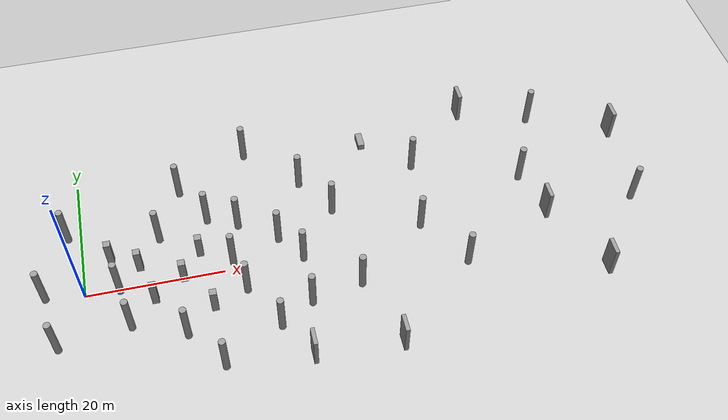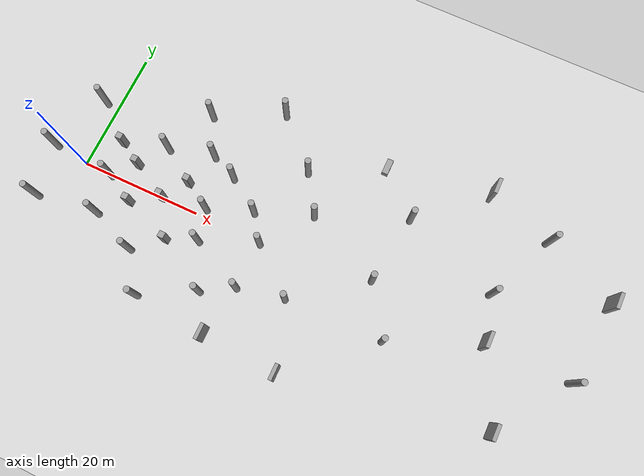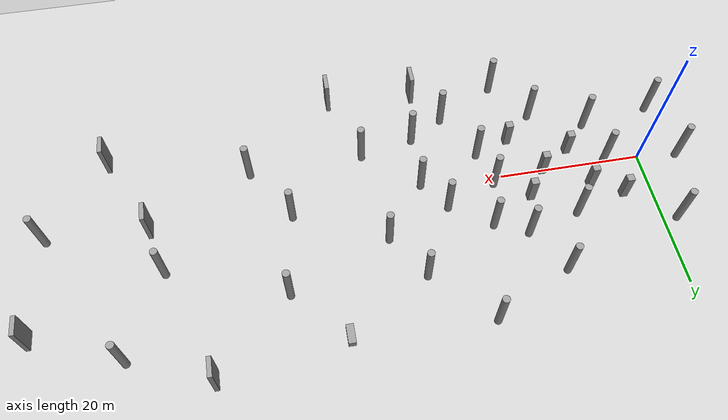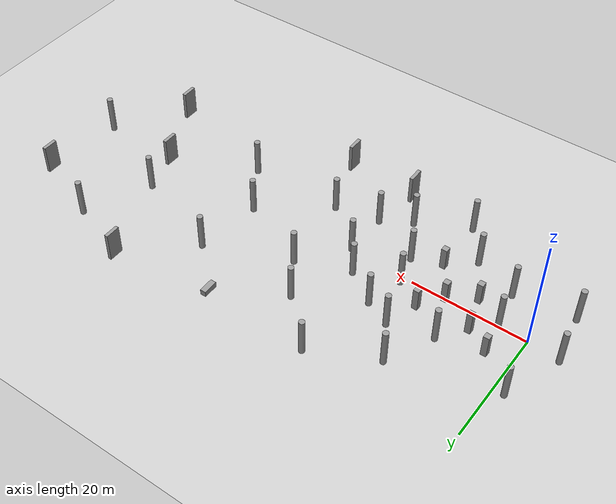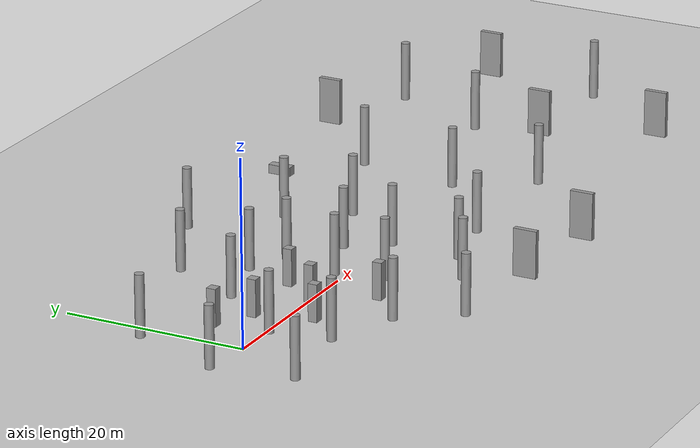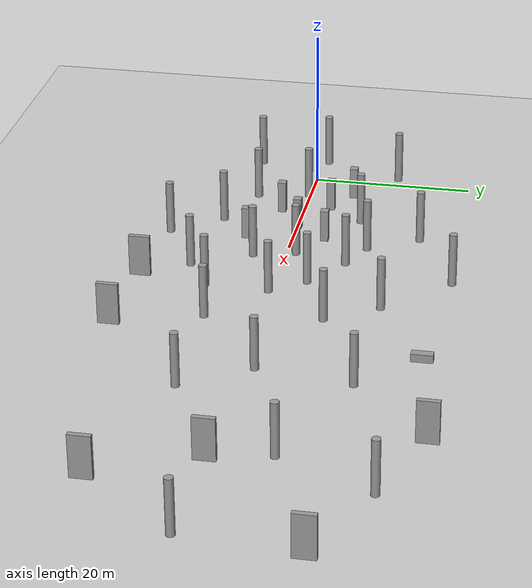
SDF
<sdf version="1.6">
 <world name="default">
  <light name="sun" type="directional">
   <pose>0 0 10 0 -0 0</pose>
   <diffuse>0.8 0.8 0.8 1</diffuse>
   <specular>0.2 0.2 0.2 1</specular>
   <attenuation>
    <range>1000</range>
    <constant>0.9</constant>
    <linear>0.01</linear>
    <quadratic>0.001</quadratic>
   </attenuation>
   <direction>-0.5 0.1 -0.9</direction>
  </light>
  <model name="ground_plane">
   <static>1</static>
   <link name="link">
    <collision name="collision">
     <geometry><plane><normal>0 0 1</normal><size>100 100</size></plane></geometry>
     <surface><friction><ode><mu>100</mu><mu2>50</mu2></ode></friction></surface>
    </collision>
    <visual name="visual">
     <cast_shadows>0</cast_shadows>
     <geometry><plane><normal>0 0 1</normal><size>20000 20000</size></plane></geometry>
     <material>
      <script><uri>file://media/materials/scripts/gazebo.material</uri><name>Gazebo/Grey</name></script>
     </material>
    </visual>
   </link>
  </model>
  <gravity>0 0 -9.8</gravity>
  <magnetic_field>6e-06 2.3e-05 -4.2e-05</magnetic_field>
  <atmosphere type="adiabatic"/>
  <physics name="default_physics" default="0" type="ode">
   <max_step_size>0.001</max_step_size>
   <real_time_factor>1</real_time_factor>
   <real_time_update_rate>1000</real_time_update_rate>
  </physics>
  <scene><ambient>0.4 0.4 0.4 1</ambient><background>0.7 0.7 0.7 1</background><shadows>1</shadows></scene>
  <audio><device>default</device></audio>
  <spherical_coordinates>
   <surface_model>EARTH_WGS84</surface_model>
   <latitude_deg>0</latitude_deg>
   <longitude_deg>0</longitude_deg>
   <elevation>0</elevation>
   <heading_deg>0</heading_deg>
  </spherical_coordinates>
  <model name="unit_cylinder">
   <pose>4.99871 -0.213403 3.35891 0 -0 0.006155</pose>
   <link name="link">
    <inertial>
     <mass>1</mass>
     <inertia><ixx>0.145833</ixx><ixy>0</ixy><ixz>0</ixz><iyy>0.145833</iyy><iyz>0</iyz><izz>0.125</izz></inertia>
    </inertial>
    <collision name="collision">
     <geometry><cylinder><radius>0.5</radius><length>6.71783</length></cylinder></geometry>
    </collision>
    <visual name="visual">
     <geometry><cylinder><radius>0.5</radius><length>6.71783</length></cylinder></geometry>
     <material>
      <script><name>Gazebo/Grey</name><uri>file://media/materials/scripts/gazebo.material</uri></script>
     </material>
    </visual>
   </link>
  </model>
  <model name="unit_box">
   <pose>4.11267 5.56916 2.02901 0 -1e-06 -0.002118</pose>
   <link name="link">
    <inertial>
     <mass>1</mass>
     <inertia>
      <ixx>0.166667</ixx>
      <ixy>0</ixy>
      <ixz>0</ixz>
      <iyy>0.166667</iyy>
      <iyz>0</iyz>
      <izz>0.166667</izz>
     </inertia>
    </inertial>
    <collision name="collision"><geometry><box><size>1 1 4.05803</size></box></geometry></collision>
    <visual name="visual">
     <geometry><box><size>1 1 4.05803</size></box></geometry>
     <material>
      <script><name>Gazebo/Grey</name><uri>file://media/materials/scripts/gazebo.material</uri></script>
     </material>
    </visual>
   </link>
  </model>
  <model name="unit_box_clone">
   <pose>8.1035 3.24149 2.02901 0 1e-06 -0.001531</pose>
   <link name="link">
    <inertial>
     <mass>1</mass>
     <inertia>
      <ixx>0.166667</ixx>
      <ixy>0</ixy>
      <ixz>0</ixz>
      <iyy>0.166667</iyy>
      <iyz>0</iyz>
      <izz>0.166667</izz>
     </inertia>
    </inertial>
    <collision name="collision"><geometry><box><size>1 1 4.05803</size></box></geometry></collision>
    <visual name="visual">
     <geometry><box><size>1 1 4.05803</size></box></geometry>
     <material>
      <script><name>Gazebo/Grey</name><uri>file://media/materials/scripts/gazebo.material</uri></script>
     </material>
    </visual>
   </link>
  </model>
  <model name="unit_box_clone_0">
   <pose>9.76202 -2.77594 2.02901 1e-06 -0 -0.002239</pose>
   <link name="link">
    <inertial>
     <mass>1</mass>
     <inertia>
      <ixx>0.166667</ixx>
      <ixy>0</ixy>
      <ixz>0</ixz>
      <iyy>0.166667</iyy>
      <iyz>0</iyz>
      <izz>0.166667</izz>
     </inertia>
    </inertial>
    <collision name="collision"><geometry><box><size>1 1 4.05803</size></box></geometry></collision>
    <visual name="visual">
     <geometry><box><size>1 1 4.05803</size></box></geometry>
     <material>
      <script><name>Gazebo/Grey</name><uri>file://media/materials/scripts/gazebo.material</uri></script>
     </material>
    </visual>
   </link>
  </model>
  <model name="unit_box_clone_1">
   <pose>14.1052 0.019093 2.02901 0 -1e-06 -0.00179</pose>
   <link name="link">
    <inertial>
     <mass>1</mass>
     <inertia>
      <ixx>0.166667</ixx>
      <ixy>0</ixy>
      <ixz>0</ixz>
      <iyy>0.166667</iyy>
      <iyz>0</iyz>
      <izz>0.166667</izz>
     </inertia>
    </inertial>
    <collision name="collision"><geometry><box><size>1 1 4.05803</size></box></geometry></collision>
    <visual name="visual">
     <geometry><box><size>1 1 4.05803</size></box></geometry>
     <material>
      <script><name>Gazebo/Grey</name><uri>file://media/materials/scripts/gazebo.material</uri></script>
     </material>
    </visual>
   </link>
  </model>
  <model name="unit_box_clone_2">
   <pose>16.892 3.92415 2.02901 -1e-06 -0 -0.002498</pose>
   <link name="link">
    <inertial>
     <mass>1</mass>
     <inertia>
      <ixx>0.166667</ixx>
      <ixy>0</ixy>
      <ixz>0</ixz>
      <iyy>0.166667</iyy>
      <iyz>0</iyz>
      <izz>0.166667</izz>
     </inertia>
    </inertial>
    <collision name="collision"><geometry><box><size>1 1 4.05803</size></box></geometry></collision>
    <visual name="visual">
     <geometry><box><size>1 1 4.05803</size></box></geometry>
     <material>
      <script><name>Gazebo/Grey</name><uri>file://media/materials/scripts/gazebo.material</uri></script>
     </material>
    </visual>
   </link>
  </model>
  <model name="unit_box_clone_3">
   <pose>17.7979 -5.80746 2.02901 -1e-06 -0 -0.002314</pose>
   <link name="link">
    <inertial>
     <mass>1</mass>
     <inertia>
      <ixx>0.166667</ixx>
      <ixy>0</ixy>
      <ixz>0</ixz>
      <iyy>0.166667</iyy>
      <iyz>0</iyz>
      <izz>0.166667</izz>
     </inertia>
    </inertial>
    <collision name="collision"><geometry><box><size>1 1 4.05803</size></box></geometry></collision>
    <visual name="visual">
     <geometry><box><size>1 1 4.05803</size></box></geometry>
     <material>
      <script><name>Gazebo/Grey</name><uri>file://media/materials/scripts/gazebo.material</uri></script>
     </material>
    </visual>
   </link>
  </model>
  <model name="unit_cylinder_clone">
   <pose>11.3611 7.59955 3.35891 0 -0 0.006345</pose>
   <link name="link">
    <inertial>
     <mass>1</mass>
     <inertia><ixx>0.145833</ixx><ixy>0</ixy><ixz>0</ixz><iyy>0.145833</iyy><iyz>0</iyz><izz>0.125</izz></inertia>
    </inertial>
    <collision name="collision">
     <geometry><cylinder><radius>0.5</radius><length>6.71784</length></cylinder></geometry>
    </collision>
    <visual name="visual">
     <geometry><cylinder><radius>0.5</radius><length>6.71784</length></cylinder></geometry>
     <material>
      <script><name>Gazebo/Grey</name><uri>file://media/materials/scripts/gazebo.material</uri></script>
     </material>
    </visual>
   </link>
  </model>
  <model name="unit_cylinder_clone_0">
   <pose>6.11811 -6.58773 3.35892 0 -0 0.006228</pose>
   <link name="link">
    <inertial>
     <mass>1</mass>
     <inertia><ixx>0.145833</ixx><ixy>0</ixy><ixz>0</ixz><iyy>0.145833</iyy><iyz>0</iyz><izz>0.125</izz></inertia>
    </inertial>
    <collision name="collision">
     <geometry><cylinder><radius>0.5</radius><length>6.71784</length></cylinder></geometry>
    </collision>
    <visual name="visual">
     <geometry><cylinder><radius>0.5</radius><length>6.71784</length></cylinder></geometry>
     <material>
      <script><name>Gazebo/Grey</name><uri>file://media/materials/scripts/gazebo.material</uri></script>
     </material>
    </visual>
   </link>
  </model>
  <model name="unit_cylinder_clone_1">
   <pose>13.5787 -9.53663 3.35891 0 -0 0.00619</pose>
   <link name="link">
    <inertial>
     <mass>1</mass>
     <inertia><ixx>0.145833</ixx><ixy>0</ixy><ixz>0</ixz><iyy>0.145833</iyy><iyz>0</iyz><izz>0.125</izz></inertia>
    </inertial>
    <collision name="collision">
     <geometry><cylinder><radius>0.5</radius><length>6.71784</length></cylinder></geometry>
    </collision>
    <visual name="visual">
     <geometry><cylinder><radius>0.5</radius><length>6.71784</length></cylinder></geometry>
     <material>
      <script><name>Gazebo/Grey</name><uri>file://media/materials/scripts/gazebo.material</uri></script>
     </material>
    </visual>
   </link>
  </model>
  <model name="unit_cylinder_clone_2">
   <pose>21.3973 1.13938 3.35892 0 -0 0.006161</pose>
   <link name="link">
    <inertial>
     <mass>1</mass>
     <inertia><ixx>0.145833</ixx><ixy>0</ixy><ixz>0</ixz><iyy>0.145833</iyy><iyz>0</iyz><izz>0.125</izz></inertia>
    </inertial>
    <collision name="collision">
     <geometry><cylinder><radius>0.5</radius><length>6.71784</length></cylinder></geometry>
    </collision>
    <visual name="visual">
     <geometry><cylinder><radius>0.5</radius><length>6.71784</length></cylinder></geometry>
     <material>
      <script><name>Gazebo/Grey</name><uri>file://media/materials/scripts/gazebo.material</uri></script>
     </material>
    </visual>
   </link>
  </model>
  <model name="unit_cylinder_clone_3">
   <pose>22.6899 -3.96109 3.35891 0 -0 0.005784</pose>
   <link name="link">
    <inertial>
     <mass>1</mass>
     <inertia><ixx>0.145833</ixx><ixy>0</ixy><ixz>0</ixz><iyy>0.145833</iyy><iyz>0</iyz><izz>0.125</izz></inertia>
    </inertial>
    <collision name="collision">
     <geometry><cylinder><radius>0.5</radius><length>6.71784</length></cylinder></geometry>
    </collision>
    <visual name="visual">
     <geometry><cylinder><radius>0.5</radius><length>6.71784</length></cylinder></geometry>
     <material>
      <script><name>Gazebo/Grey</name><uri>file://media/materials/scripts/gazebo.material</uri></script>
     </material>
    </visual>
   </link>
  </model>
  <model name="unit_cylinder_clone_4">
   <pose>23.0207 7.56781 3.35892 0 -0 0.005775</pose>
   <link name="link">
    <inertial>
     <mass>1</mass>
     <inertia><ixx>0.145833</ixx><ixy>0</ixy><ixz>0</ixz><iyy>0.145833</iyy><iyz>0</iyz><izz>0.125</izz></inertia>
    </inertial>
    <collision name="collision">
     <geometry><cylinder><radius>0.5</radius><length>6.71784</length></cylinder></geometry>
    </collision>
    <visual name="visual">
     <geometry><cylinder><radius>0.5</radius><length>6.71784</length></cylinder></geometry>
     <material>
      <script><name>Gazebo/Grey</name><uri>file://media/materials/scripts/gazebo.material</uri></script>
     </material>
    </visual>
   </link>
  </model>
  <model name="unit_cylinder_clone_5">
   <pose>18.6651 9.53159 3.35891 0 -0 0.005774</pose>
   <link name="link">
    <inertial>
     <mass>1</mass>
     <inertia><ixx>0.145833</ixx><ixy>0</ixy><ixz>0</ixz><iyy>0.145833</iyy><iyz>0</iyz><izz>0.125</izz></inertia>
    </inertial>
    <collision name="collision">
     <geometry><cylinder><radius>0.5</radius><length>6.71784</length></cylinder></geometry>
    </collision>
    <visual name="visual">
     <geometry><cylinder><radius>0.5</radius><length>6.71784</length></cylinder></geometry>
     <material>
      <script><name>Gazebo/Grey</name><uri>file://media/materials/scripts/gazebo.material</uri></script>
     </material>
    </visual>
   </link>
  </model>
  <model name="unit_cylinder_clone_6">
   <pose>28.4943 3.83468 3.35892 0 -0 0.006237</pose>
   <link name="link">
    <inertial>
     <mass>1</mass>
     <inertia><ixx>0.145833</ixx><ixy>0</ixy><ixz>0</ixz><iyy>0.145833</iyy><iyz>0</iyz><izz>0.125</izz></inertia>
    </inertial>
    <collision name="collision">
     <geometry><cylinder><radius>0.5</radius><length>6.71784</length></cylinder></geometry>
    </collision>
    <visual name="visual">
     <geometry><cylinder><radius>0.5</radius><length>6.71784</length></cylinder></geometry>
     <material>
      <script><name>Gazebo/Grey</name><uri>file://media/materials/scripts/gazebo.material</uri></script>
     </material>
    </visual>
   </link>
  </model>
  <model name="unit_cylinder_clone_7">
   <pose>31.3003 -8.04767 3.35892 0 -0 0.00615</pose>
   <link name="link">
    <inertial>
     <mass>1</mass>
     <inertia><ixx>0.145833</ixx><ixy>0</ixy><ixz>0</ixz><iyy>0.145833</iyy><iyz>0</iyz><izz>0.125</izz></inertia>
    </inertial>
    <collision name="collision">
     <geometry><cylinder><radius>0.5</radius><length>6.71784</length></cylinder></geometry>
    </collision>
    <visual name="visual">
     <geometry><cylinder><radius>0.5</radius><length>6.71784</length></cylinder></geometry>
     <material>
      <script><name>Gazebo/Grey</name><uri>file://media/materials/scripts/gazebo.material</uri></script>
     </material>
    </visual>
   </link>
  </model>
  <model name="unit_cylinder_clone_8">
   <pose>31.4799 -0.305957 3.35891 0 -0 0.006161</pose>
   <link name="link">
    <inertial>
     <mass>1</mass>
     <inertia><ixx>0.145833</ixx><ixy>0</ixy><ixz>0</ixz><iyy>0.145833</iyy><iyz>0</iyz><izz>0.125</izz></inertia>
    </inertial>
    <collision name="collision">
     <geometry><cylinder><radius>0.5</radius><length>6.71784</length></cylinder></geometry>
    </collision>
    <visual name="visual">
     <geometry><cylinder><radius>0.5</radius><length>6.71784</length></cylinder></geometry>
     <material>
      <script><name>Gazebo/Grey</name><uri>file://media/materials/scripts/gazebo.material</uri></script>
     </material>
    </visual>
   </link>
  </model>
  <model name="unit_cylinder_clone_9">
   <pose>37.2948 7.32497 3.35892 0 -0 0.006225</pose>
   <link name="link">
    <inertial>
     <mass>1</mass>
     <inertia><ixx>0.145833</ixx><ixy>0</ixy><ixz>0</ixz><iyy>0.145833</iyy><iyz>0</iyz><izz>0.125</izz></inertia>
    </inertial>
    <collision name="collision">
     <geometry><cylinder><radius>0.5</radius><length>6.71784</length></cylinder></geometry>
    </collision>
    <visual name="visual">
     <geometry><cylinder><radius>0.5</radius><length>6.71784</length></cylinder></geometry>
     <material>
      <script><name>Gazebo/Grey</name><uri>file://media/materials/scripts/gazebo.material</uri></script>
     </material>
    </visual>
   </link>
  </model>
  <model name="unit_cylinder_clone_10">
   <pose>38.8037 -6.47167 3.35891 0 -0 0.006339</pose>
   <link name="link">
    <inertial>
     <mass>1</mass>
     <inertia><ixx>0.145833</ixx><ixy>0</ixy><ixz>0</ixz><iyy>0.145833</iyy><iyz>0</iyz><izz>0.125</izz></inertia>
    </inertial>
    <collision name="collision">
     <geometry><cylinder><radius>0.5</radius><length>6.71784</length></cylinder></geometry>
    </collision>
    <visual name="visual">
     <geometry><cylinder><radius>0.5</radius><length>6.71784</length></cylinder></geometry>
     <material>
      <script><name>Gazebo/Grey</name><uri>file://media/materials/scripts/gazebo.material</uri></script>
     </material>
    </visual>
   </link>
  </model>
  <model name="unit_cylinder_clone_11">
   <pose>33.356 13.4599 3.35892 0 -0 0.006325</pose>
   <link name="link">
    <inertial>
     <mass>1</mass>
     <inertia><ixx>0.145833</ixx><ixy>0</ixy><ixz>0</ixz><iyy>0.145833</iyy><iyz>0</iyz><izz>0.125</izz></inertia>
    </inertial>
    <collision name="collision">
     <geometry><cylinder><radius>0.5</radius><length>6.71784</length></cylinder></geometry>
    </collision>
    <visual name="visual">
     <geometry><cylinder><radius>0.5</radius><length>6.71784</length></cylinder></geometry>
     <material>
      <script><name>Gazebo/Grey</name><uri>file://media/materials/scripts/gazebo.material</uri></script>
     </material>
    </visual>
   </link>
  </model>
  <model name="unit_cylinder_clone_12">
   <pose>49.6045 1.74483 3.35892 0 -0 0.006078</pose>
   <link name="link">
    <inertial>
     <mass>1</mass>
     <inertia><ixx>0.145833</ixx><ixy>0</ixy><ixz>0</ixz><iyy>0.145833</iyy><iyz>0</iyz><izz>0.125</izz></inertia>
    </inertial>
    <collision name="collision">
     <geometry><cylinder><radius>0.5</radius><length>6.71784</length></cylinder></geometry>
    </collision>
    <visual name="visual">
     <geometry><cylinder><radius>0.5</radius><length>6.71784</length></cylinder></geometry>
     <material>
      <script><name>Gazebo/Grey</name><uri>file://media/materials/scripts/gazebo.material</uri></script>
     </material>
    </visual>
   </link>
  </model>
  <model name="unit_cylinder_clone_13">
   <pose>51.1756 13.1671 3.35891 0 -0 0.006052</pose>
   <link name="link">
    <inertial>
     <mass>1</mass>
     <inertia><ixx>0.145833</ixx><ixy>0</ixy><ixz>0</ixz><iyy>0.145833</iyy><iyz>0</iyz><izz>0.125</izz></inertia>
    </inertial>
    <collision name="collision">
     <geometry><cylinder><radius>0.5</radius><length>6.71784</length></cylinder></geometry>
    </collision>
    <visual name="visual">
     <geometry><cylinder><radius>0.5</radius><length>6.71784</length></cylinder></geometry>
     <material>
      <script><name>Gazebo/Grey</name><uri>file://media/materials/scripts/gazebo.material</uri></script>
     </material>
    </visual>
   </link>
  </model>
  <model name="unit_cylinder_clone_14">
   <pose>54.6818 -6.06348 3.35892 0 -0 0.006185</pose>
   <link name="link">
    <inertial>
     <mass>1</mass>
     <inertia><ixx>0.145833</ixx><ixy>0</ixy><ixz>0</ixz><iyy>0.145833</iyy><iyz>0</iyz><izz>0.125</izz></inertia>
    </inertial>
    <collision name="collision">
     <geometry><cylinder><radius>0.5</radius><length>6.71784</length></cylinder></geometry>
    </collision>
    <visual name="visual">
     <geometry><cylinder><radius>0.5</radius><length>6.71784</length></cylinder></geometry>
     <material>
      <script><name>Gazebo/Grey</name><uri>file://media/materials/scripts/gazebo.material</uri></script>
     </material>
    </visual>
   </link>
  </model>
  <model name="unit_cylinder_clone_15">
   <pose>26.4353 -10.9194 3.35891 0 -0 0.006247</pose>
   <link name="link">
    <inertial>
     <mass>1</mass>
     <inertia><ixx>0.145833</ixx><ixy>0</ixy><ixz>0</ixz><iyy>0.145833</iyy><iyz>0</iyz><izz>0.125</izz></inertia>
    </inertial>
    <collision name="collision">
     <geometry><cylinder><radius>0.5</radius><length>6.71784</length></cylinder></geometry>
    </collision>
    <visual name="visual">
     <geometry><cylinder><radius>0.5</radius><length>6.71784</length></cylinder></geometry>
     <material>
      <script><name>Gazebo/Grey</name><uri>file://media/materials/scripts/gazebo.material</uri></script>
     </material>
    </visual>
   </link>
  </model>
  <model name="unit_cylinder_clone_16">
   <pose>66.8402 7.46458 3.35891 0 -0 0.006223</pose>
   <link name="link">
    <inertial>
     <mass>1</mass>
     <inertia><ixx>0.145833</ixx><ixy>0</ixy><ixz>0</ixz><iyy>0.145833</iyy><iyz>0</iyz><izz>0.125</izz></inertia>
    </inertial>
    <collision name="collision">
     <geometry><cylinder><radius>0.5</radius><length>6.71784</length></cylinder></geometry>
    </collision>
    <visual name="visual">
     <geometry><cylinder><radius>0.5</radius><length>6.71784</length></cylinder></geometry>
     <material>
      <script><name>Gazebo/Grey</name><uri>file://media/materials/scripts/gazebo.material</uri></script>
     </material>
    </visual>
   </link>
  </model>
  <model name="unit_cylinder_clone_17">
   <pose>71.9439 18.7542 3.35892 0 -0 0.006064</pose>
   <link name="link">
    <inertial>
     <mass>1</mass>
     <inertia><ixx>0.145833</ixx><ixy>0</ixy><ixz>0</ixz><iyy>0.145833</iyy><iyz>0</iyz><izz>0.125</izz></inertia>
    </inertial>
    <collision name="collision">
     <geometry><cylinder><radius>0.5</radius><length>6.71784</length></cylinder></geometry>
    </collision>
    <visual name="visual">
     <geometry><cylinder><radius>0.5</radius><length>6.71784</length></cylinder></geometry>
     <material>
      <script><name>Gazebo/Grey</name><uri>file://media/materials/scripts/gazebo.material</uri></script>
     </material>
    </visual>
   </link>
  </model>
  <model name="unit_cylinder_clone_18">
   <pose>82.3733 0.103753 3.35891 0 -0 0.006325</pose>
   <link name="link">
    <inertial>
     <mass>1</mass>
     <inertia><ixx>0.145833</ixx><ixy>0</ixy><ixz>0</ixz><iyy>0.145833</iyy><iyz>0</iyz><izz>0.125</izz></inertia>
    </inertial>
    <collision name="collision">
     <geometry><cylinder><radius>0.5</radius><length>6.71784</length></cylinder></geometry>
    </collision>
    <visual name="visual">
     <geometry><cylinder><radius>0.5</radius><length>6.71784</length></cylinder></geometry>
     <material>
      <script><name>Gazebo/Grey</name><uri>file://media/materials/scripts/gazebo.material</uri></script>
     </material>
    </visual>
   </link>
  </model>
  <model name="unit_cylinder_clone_19">
   <pose>25.9167 20.9476 3.35892 0 -0 0.006172</pose>
   <link name="link">
    <inertial>
     <mass>1</mass>
     <inertia><ixx>0.145833</ixx><ixy>0</ixy><ixz>0</ixz><iyy>0.145833</iyy><iyz>0</iyz><izz>0.125</izz></inertia>
    </inertial>
    <collision name="collision">
     <geometry><cylinder><radius>0.5</radius><length>6.71784</length></cylinder></geometry>
    </collision>
    <visual name="visual">
     <geometry><cylinder><radius>0.5</radius><length>6.71784</length></cylinder></geometry>
     <material>
      <script><name>Gazebo/Grey</name><uri>file://media/materials/scripts/gazebo.material</uri></script>
     </material>
    </visual>
   </link>
  </model>
  <model name="unit_cylinder_clone_20">
   <pose>15.1874 15.6364 3.35891 0 -0 0.006194</pose>
   <link name="link">
    <inertial>
     <mass>1</mass>
     <inertia><ixx>0.145833</ixx><ixy>0</ixy><ixz>0</ixz><iyy>0.145833</iyy><iyz>0</iyz><izz>0.125</izz></inertia>
    </inertial>
    <collision name="collision">
     <geometry><cylinder><radius>0.5</radius><length>6.71784</length></cylinder></geometry>
    </collision>
    <visual name="visual">
     <geometry><cylinder><radius>0.5</radius><length>6.71784</length></cylinder></geometry>
     <material>
      <script><name>Gazebo/Grey</name><uri>file://media/materials/scripts/gazebo.material</uri></script>
     </material>
    </visual>
   </link>
  </model>
  <model name="unit_cylinder_clone_21">
   <pose>17.9842 -15.4412 3.35892 0 -0 0.006078</pose>
   <link name="link">
    <inertial>
     <mass>1</mass>
     <inertia><ixx>0.145833</ixx><ixy>0</ixy><ixz>0</ixz><iyy>0.145833</iyy><iyz>0</iyz><izz>0.125</izz></inertia>
    </inertial>
    <collision name="collision">
     <geometry><cylinder><radius>0.5</radius><length>6.71784</length></cylinder></geometry>
    </collision>
    <visual name="visual">
     <geometry><cylinder><radius>0.5</radius><length>6.71784</length></cylinder></geometry>
     <material>
      <script><name>Gazebo/Grey</name><uri>file://media/materials/scripts/gazebo.material</uri></script>
     </material>
    </visual>
   </link>
  </model>
  <model name="unit_cylinder_clone_22">
   <pose>-1.79218 10.531 3.35891 0 -0 0.0061</pose>
   <link name="link">
    <inertial>
     <mass>1</mass>
     <inertia><ixx>0.145833</ixx><ixy>0</ixy><ixz>0</ixz><iyy>0.145833</iyy><iyz>0</iyz><izz>0.125</izz></inertia>
    </inertial>
    <collision name="collision">
     <geometry><cylinder><radius>0.5</radius><length>6.71784</length></cylinder></geometry>
    </collision>
    <visual name="visual">
     <geometry><cylinder><radius>0.5</radius><length>6.71784</length></cylinder></geometry>
     <material>
      <script><name>Gazebo/Grey</name><uri>file://media/materials/scripts/gazebo.material</uri></script>
     </material>
    </visual>
   </link>
  </model>
  <model name="unit_cylinder_clone_23">
   <pose>-5.44521 0.637468 3.35891 0 -0 0.006133</pose>
   <link name="link">
    <inertial>
     <mass>1</mass>
     <inertia><ixx>0.145833</ixx><ixy>0</ixy><ixz>0</ixz><iyy>0.145833</iyy><iyz>0</iyz><izz>0.125</izz></inertia>
    </inertial>
    <collision name="collision">
     <geometry><cylinder><radius>0.5</radius><length>6.71784</length></cylinder></geometry>
    </collision>
    <visual name="visual">
     <geometry><cylinder><radius>0.5</radius><length>6.71784</length></cylinder></geometry>
     <material>
      <script><name>Gazebo/Grey</name><uri>file://media/materials/scripts/gazebo.material</uri></script>
     </material>
    </visual>
   </link>
  </model>
  <model name="unit_cylinder_clone_24">
   <pose>-4.00016 -7.99994 3.35892 0 -0 0.006234</pose>
   <link name="link">
    <inertial>
     <mass>1</mass>
     <inertia><ixx>0.145833</ixx><ixy>0</ixy><ixz>0</ixz><iyy>0.145833</iyy><iyz>0</iyz><izz>0.125</izz></inertia>
    </inertial>
    <collision name="collision">
     <geometry><cylinder><radius>0.5</radius><length>6.71784</length></cylinder></geometry>
    </collision>
    <visual name="visual">
     <geometry><cylinder><radius>0.5</radius><length>6.71784</length></cylinder></geometry>
     <material>
      <script><name>Gazebo/Grey</name><uri>file://media/materials/scripts/gazebo.material</uri></script>
     </material>
    </visual>
   </link>
  </model>
  <model name="unit_box_0">
   <pose>44.4385 19.8352 0.499926 -5.8e-05 -0 -0</pose>
   <link name="link">
    <inertial>
     <mass>1</mass>
     <inertia>
      <ixx>0.166667</ixx>
      <ixy>0</ixy>
      <ixz>0</ixz>
      <iyy>0.166667</iyy>
      <iyz>0</iyz>
      <izz>0.166667</izz>
     </inertia>
    </inertial>
    <collision name="collision"><geometry><box><size>1 2.56808 1</size></box></geometry></collision>
    <visual name="visual">
     <geometry><box><size>1 2.56808 1</size></box></geometry>
     <material>
      <script><name>Gazebo/Grey</name><uri>file://media/materials/scripts/gazebo.material</uri></script>
     </material>
    </visual>
   </link>
  </model>
  <model name="unit_box_0_clone">
   <pose>83.806 13.6849 2.58959 0 -0 0.000118</pose>
   <link name="link">
    <inertial>
     <mass>1</mass>
     <inertia>
      <ixx>0.166667</ixx>
      <ixy>0</ixy>
      <ixz>0</ixz>
      <iyy>0.166667</iyy>
      <iyz>0</iyz>
      <izz>0.166667</izz>
     </inertia>
    </inertial>
    <collision name="collision"><geometry><box><size>0.585666 2.56808 5.17919</size></box></geometry></collision>
    <visual name="visual">
     <geometry><box><size>0.585666 2.56808 5.17919</size></box></geometry>
     <material>
      <script><name>Gazebo/Grey</name><uri>file://media/materials/scripts/gazebo.material</uri></script>
     </material>
    </visual>
   </link>
  </model>
  <model name="unit_box_0_clone_0">
   <pose>74.1055 -11.2388 2.58959 0 -0 0.000118</pose>
   <link name="link">
    <inertial>
     <mass>1</mass>
     <inertia>
      <ixx>0.166667</ixx>
      <ixy>0</ixy>
      <ixz>0</ixz>
      <iyy>0.166667</iyy>
      <iyz>0</iyz>
      <izz>0.166667</izz>
     </inertia>
    </inertial>
    <collision name="collision"><geometry><box><size>0.585666 2.56808 5.17919</size></box></geometry></collision>
    <visual name="visual">
     <geometry><box><size>0.585666 2.56808 5.17919</size></box></geometry>
     <material>
      <script><name>Gazebo/Grey</name><uri>file://media/materials/scripts/gazebo.material</uri></script>
     </material>
    </visual>
   </link>
  </model>
  <model name="unit_box_0_clone_1">
   <pose>68.599 0.379614 2.58959 0 1e-06 9.6e-05</pose>
   <link name="link">
    <inertial>
     <mass>1</mass>
     <inertia>
      <ixx>0.166667</ixx>
      <ixy>0</ixy>
      <ixz>0</ixz>
      <iyy>0.166667</iyy>
      <iyz>0</iyz>
      <izz>0.166667</izz>
     </inertia>
    </inertial>
    <collision name="collision"><geometry><box><size>0.585666 2.56808 5.17919</size></box></geometry></collision>
    <visual name="visual">
     <geometry><box><size>0.585666 2.56808 5.17919</size></box></geometry>
     <material>
      <script><name>Gazebo/Grey</name><uri>file://media/materials/scripts/gazebo.material</uri></script>
     </material>
    </visual>
   </link>
  </model>
  <model name="unit_box_0_clone_2">
   <pose>61.228 22.6487 2.58963 0 0.000131 0.000107</pose>
   <link name="link">
    <inertial>
     <mass>1</mass>
     <inertia>
      <ixx>0.166667</ixx>
      <ixy>0</ixy>
      <ixz>0</ixz>
      <iyy>0.166667</iyy>
      <iyz>0</iyz>
      <izz>0.166667</izz>
     </inertia>
    </inertial>
    <collision name="collision"><geometry><box><size>0.585666 2.56808 5.17919</size></box></geometry></collision>
    <visual name="visual">
     <geometry><box><size>0.585666 2.56808 5.17919</size></box></geometry>
     <material>
      <script><name>Gazebo/Grey</name><uri>file://media/materials/scripts/gazebo.material</uri></script>
     </material>
    </visual>
   </link>
  </model>
  <model name="unit_box_0_clone_3">
   <pose>42.2242 -16.9698 2.5896 -1e-06 0 0.000112</pose>
   <link name="link">
    <inertial>
     <mass>1</mass>
     <inertia>
      <ixx>0.166667</ixx>
      <ixy>0</ixy>
      <ixz>0</ixz>
      <iyy>0.166667</iyy>
      <iyz>0</iyz>
      <izz>0.166667</izz>
     </inertia>
    </inertial>
    <collision name="collision"><geometry><box><size>0.585666 2.56808 5.17919</size></box></geometry></collision>
    <visual name="visual">
     <geometry><box><size>0.585666 2.56808 5.17919</size></box></geometry>
     <material>
      <script><name>Gazebo/Grey</name><uri>file://media/materials/scripts/gazebo.material</uri></script>
     </material>
    </visual>
   </link>
  </model>
  <model name="unit_box_0_clone_4">
   <pose>29.9032 -16.3358 2.58959 0 -0 0.000106</pose>
   <link name="link">
    <inertial>
     <mass>1</mass>
     <inertia>
      <ixx>0.166667</ixx>
      <ixy>0</ixy>
      <ixz>0</ixz>
      <iyy>0.166667</iyy>
      <iyz>0</iyz>
      <izz>0.166667</izz>
     </inertia>
    </inertial>
    <collision name="collision"><geometry><box><size>0.585666 2.56808 5.17919</size></box></geometry></collision>
    <visual name="visual">
     <geometry><box><size>0.585666 2.56808 5.17919</size></box></geometry>
     <material>
      <script><name>Gazebo/Grey</name><uri>file://media/materials/scripts/gazebo.material</uri></script>
     </material>
    </visual>
   </link>
  </model>
 </world>
</sdf>
